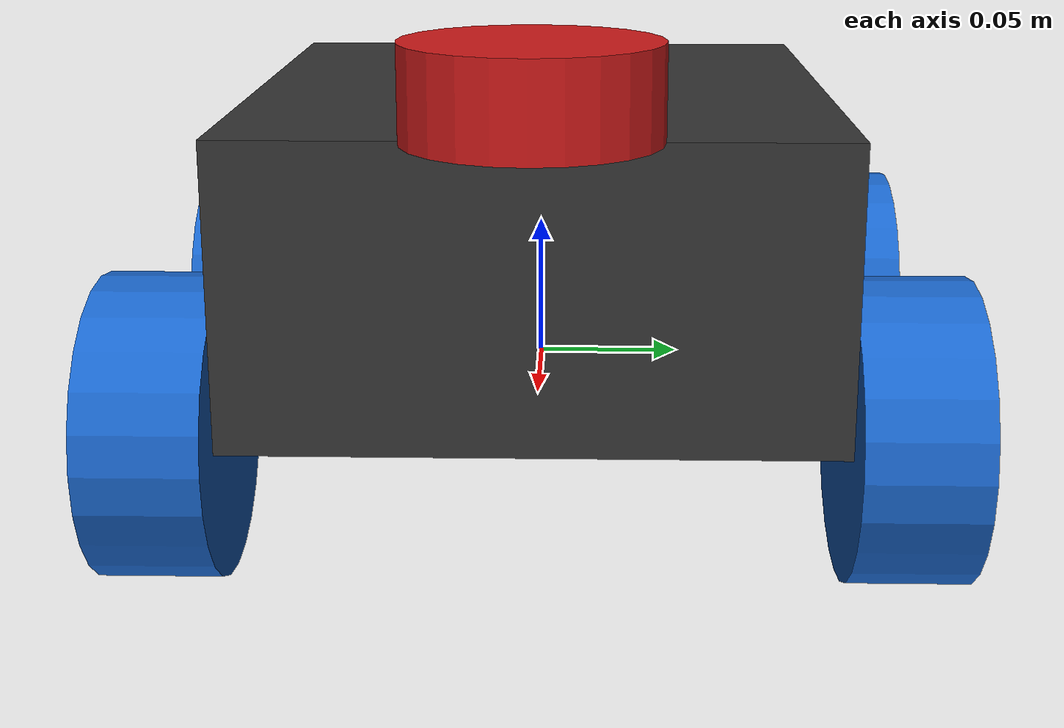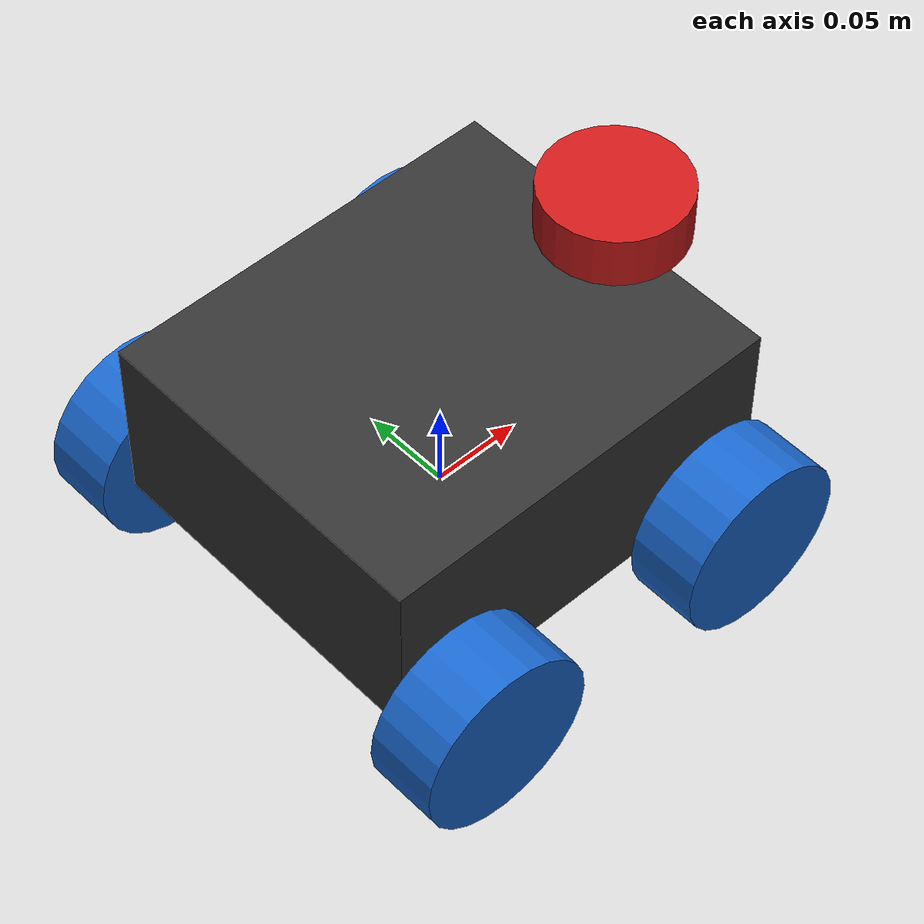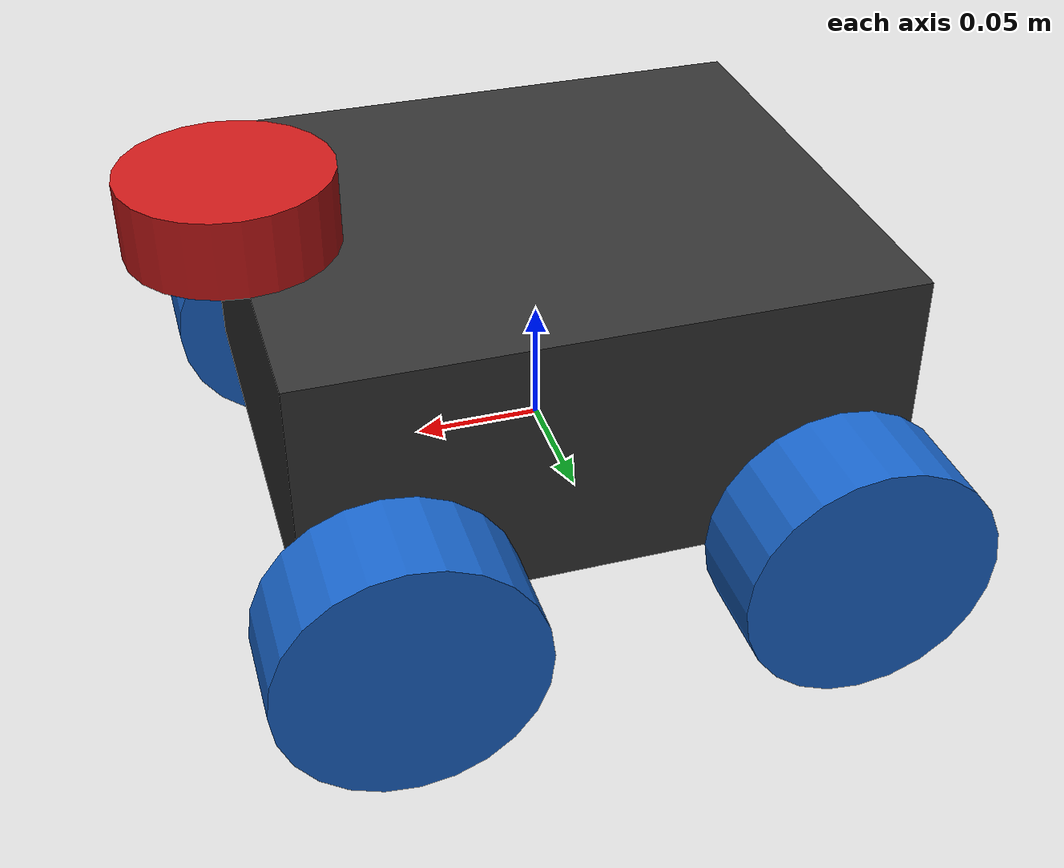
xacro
<?xml version="1.0"?>
<robot name="guardian" xmlns:xacro="http://www.ros.org/wiki/xacro">

  <!-- ── Materials ─────────────────────────────────────────────────────────── -->
  <material name="dark_grey">
    <color rgba="0.2 0.2 0.2 1.0"/>
  </material>
  <material name="blue">
    <color rgba="0.1 0.4 0.8 1.0"/>
  </material>
  <material name="red">
    <color rgba="0.8 0.1 0.1 1.0"/>
  </material>

  <!-- ── Chassis (base_link centre = ground level) ─────────────────────────── -->
  <!--  Physical size: 231.2 mm × 200 mm × 100 mm                               -->
  <link name="base_link">
    <visual>
      <origin xyz="0 0 0.05" rpy="0 0 0"/>
      <geometry>
        <box size="0.2312 0.200 0.100"/>
      </geometry>
      <material name="dark_grey"/>
    </visual>
    <collision>
      <origin xyz="0 0 0.05" rpy="0 0 0"/>
      <geometry>
        <box size="0.2312 0.200 0.100"/>
      </geometry>
    </collision>
    <inertial>
      <origin xyz="0 0 0.05" rpy="0 0 0"/>
      <mass value="4.0"/>
      <!-- box inertia: m/12*(h²+d²) etc. for 0.2312×0.200×0.100, m=4 kg -->
      <inertia ixx="0.01517" ixy="0" ixz="0"
               iyy="0.02250" iyz="0"
               izz="0.03118"/>
    </inertial>
  </link>

  <!-- ── Wheels (continuous joints, visual only) ───────────────────────────── -->
  <!-- wheel radius ~50 mm assumed; adjust if different -->
  <xacro:macro name="wheel" params="name x y">
    <link name="${name}_wheel">
      <visual>
        <origin xyz="0 0 0" rpy="1.5708 0 0"/>
        <geometry>
          <cylinder radius="0.05" length="0.04"/>
        </geometry>
        <material name="blue"/>
      </visual>
      <collision>
        <origin xyz="0 0 0" rpy="1.5708 0 0"/>
        <geometry>
          <cylinder radius="0.05" length="0.04"/>
        </geometry>
      </collision>
      <inertial>
        <mass value="0.3"/>
        <inertia ixx="0.000375" ixy="0" ixz="0"
                 iyy="0.000375" iyz="0"
                 izz="0.000375"/>
      </inertial>
    </link>
    <joint name="${name}_wheel_joint" type="continuous">
      <parent link="base_link"/>
      <child  link="${name}_wheel"/>
      <origin xyz="${x} ${y} 0" rpy="0 0 0"/>
      <axis xyz="0 1 0"/>
    </joint>
  </xacro:macro>

  <xacro:wheel name="front_left"  x=" 0.0856"  y=" 0.120"/>
  <xacro:wheel name="front_right" x=" 0.0856"  y="-0.120"/>
  <xacro:wheel name="rear_left"   x="-0.0856"  y=" 0.120"/>
  <xacro:wheel name="rear_right"  x="-0.0856"  y="-0.120"/>

  <!-- ── Scanse Sweep LIDAR ─────────────────────────────────────────────────── -->
  <!--  Mounted middle-front at top surface:                                      -->
  <!--    x = +0.1156 m (front half), y = 0 (centre), z = 0.100 m (top surface)  -->
  <link name="laser">
    <visual>
      <origin xyz="0 0 0.015" rpy="0 0 0"/>
      <geometry>
        <cylinder radius="0.04" length="0.03"/>
      </geometry>
      <material name="red"/>
    </visual>
    <collision>
      <origin xyz="0 0 0.015" rpy="0 0 0"/>
      <geometry>
        <cylinder radius="0.04" length="0.03"/>
      </geometry>
    </collision>
    <inertial>
      <mass value="0.1"/>
      <inertia ixx="0.0001" ixy="0" ixz="0"
               iyy="0.0001" iyz="0"
               izz="0.0001"/>
    </inertial>
  </link>

  <joint name="laser_joint" type="fixed">
    <parent link="base_link"/>
    <child  link="laser"/>
    <!-- front edge centre, top surface of chassis -->
    <origin xyz="0.1156 0.0 0.100" rpy="0 0 0"/>
  </joint>

</robot>
